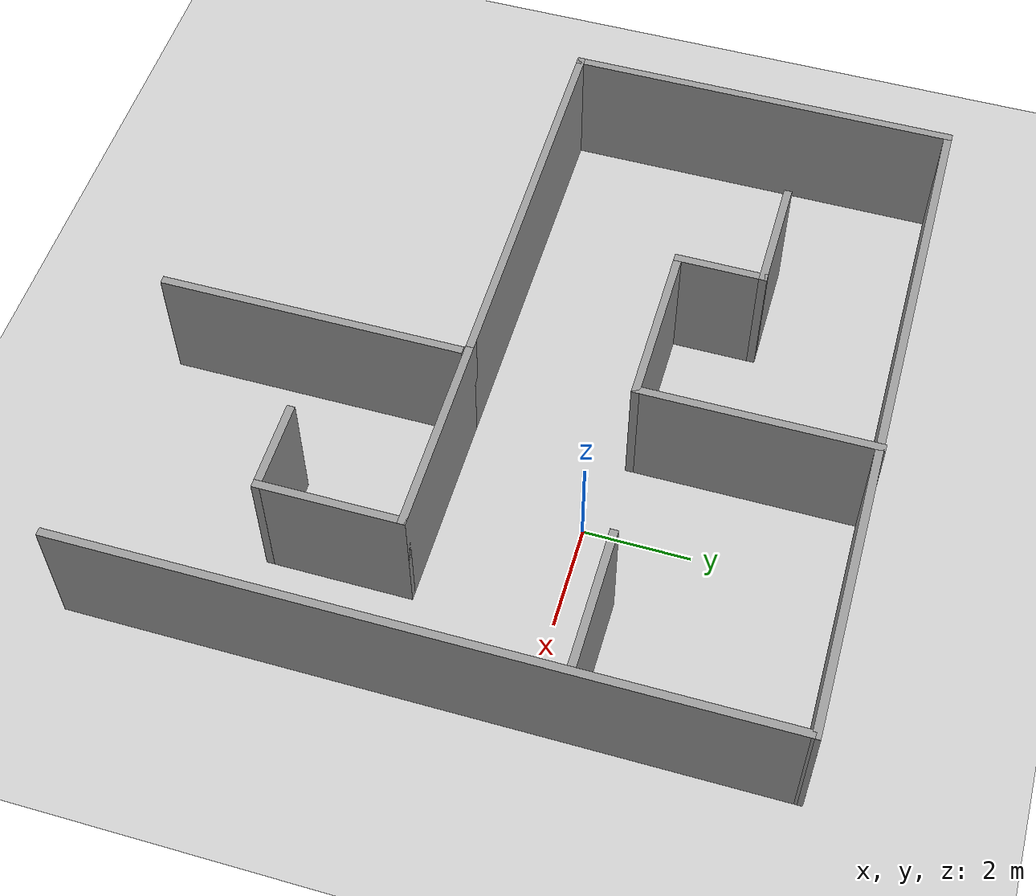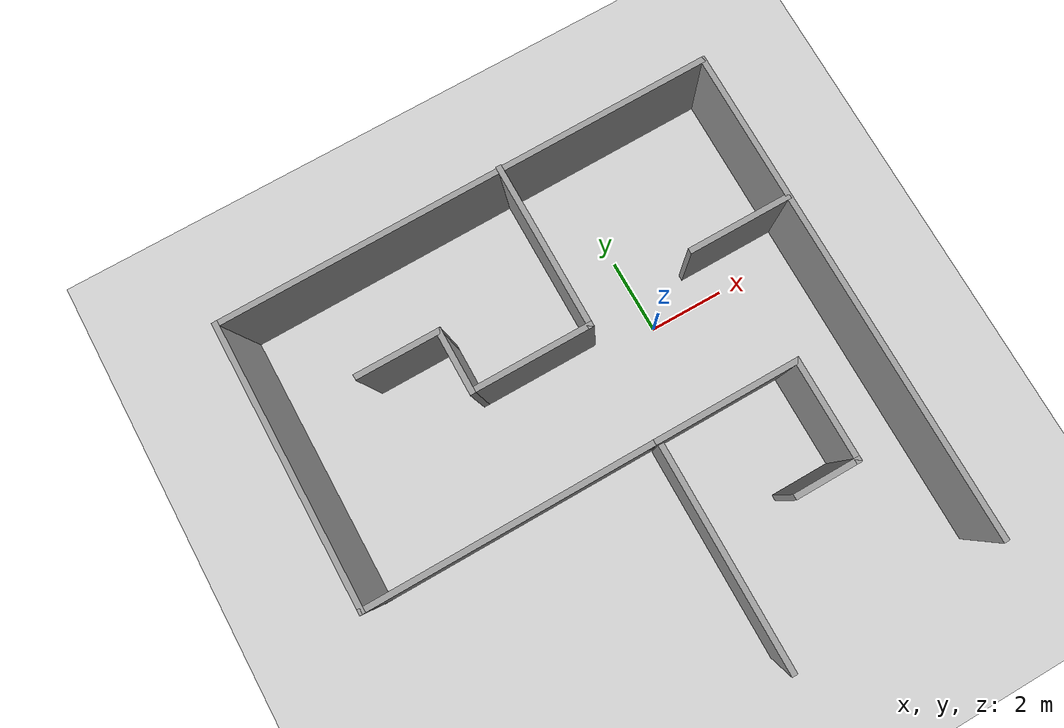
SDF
<sdf version="1.7">
 <world name="default">
  <light name="sun" type="directional">
   <pose>0 0 10 0 -0 0</pose>
   <diffuse>0.8 0.8 0.8 1</diffuse>
   <specular>0.2 0.2 0.2 1</specular>
   <attenuation>
    <range>1000</range>
    <constant>0.9</constant>
    <linear>0.01</linear>
    <quadratic>0.001</quadratic>
   </attenuation>
   <direction>-0.5 0.1 -0.9</direction>
   <spot><inner_angle>0</inner_angle><outer_angle>0</outer_angle><falloff>0</falloff></spot>
  </light>
  <model name="ground_plane">
   <static>1</static>
   <link name="link">
    <collision name="collision">
     <geometry><plane><normal>0 0 1</normal><size>100 100</size></plane></geometry>
     <surface>
      <contact><collide_bitmask>65535</collide_bitmask></contact>
      <friction><ode><mu>100</mu><mu2>50</mu2></ode></friction>
     </surface>
    </collision>
    <visual name="visual">
     <cast_shadows>0</cast_shadows>
     <geometry><plane><normal>0 0 1</normal><size>100 100</size></plane></geometry>
     <material>
      <script><uri>file://media/materials/scripts/gazebo.material</uri><name>Gazebo/Grey</name></script>
     </material>
    </visual>
   </link>
  </model>
  <gravity>0 0 -9.8</gravity>
  <magnetic_field>6e-06 2.3e-05 -4.2e-05</magnetic_field>
  <atmosphere type="adiabatic"/>
  <physics type="ode">
   <max_step_size>0.001</max_step_size>
   <real_time_factor>1</real_time_factor>
   <real_time_update_rate>1000</real_time_update_rate>
  </physics>
  <scene><ambient>0.4 0.4 0.4 1</ambient><background>0.7 0.7 0.7 1</background><shadows>1</shadows></scene>
  <spherical_coordinates>
   <surface_model>EARTH_WGS84</surface_model>
   <latitude_deg>0</latitude_deg>
   <longitude_deg>0</longitude_deg>
   <elevation>0</elevation>
   <heading_deg>0</heading_deg>
  </spherical_coordinates>
  <model name="maze">
   <pose>-2.52842 -1.77873 0 0 -0 0</pose>
   <link name="Wall_12">
    <collision name="Wall_12_Collision">
     <geometry><box><size>7.5 0.15 2.5</size></box></geometry>
     <pose>0 0 1.25 0 -0 0</pose>
    </collision>
    <visual name="Wall_12_Visual">
     <pose>0 0 1.25 0 -0 0</pose>
     <geometry><box><size>7.5 0.15 2.5</size></box></geometry>
     <material>
      <script><uri>file://media/materials/scripts/gazebo.material</uri><name>Gazebo/Grey</name></script>
      <ambient>1 1 1 1</ambient>
     </material>
     <meta><layer>0</layer></meta>
    </visual>
    <pose>-6.55 2.85046 0 0 -0 -1.5708</pose>
   </link>
   <link name="Wall_14">
    <collision name="Wall_14_Collision">
     <geometry><box><size>4.5 0.15 2.5</size></box></geometry>
     <pose>0 0 1.25 0 -0 0</pose>
    </collision>
    <visual name="Wall_14_Visual">
     <pose>0 0 1.25 0 -0 0</pose>
     <geometry><box><size>4.5 0.15 2.5</size></box></geometry>
     <material>
      <script><uri>file://media/materials/scripts/gazebo.material</uri><name>Gazebo/Grey</name></script>
      <ambient>1 1 1 1</ambient>
     </material>
     <meta><layer>0</layer></meta>
    </visual>
    <pose>0.943077 4.42082 0 0 -0 -1.5708</pose>
   </link>
   <link name="Wall_15">
    <collision name="Wall_15_Collision">
     <geometry><box><size>3.25 0.15 2.5</size></box></geometry>
     <pose>0 0 1.25 0 -0 0</pose>
    </collision>
    <visual name="Wall_15_Visual">
     <pose>0 0 1.25 0 -0 0</pose>
     <geometry><box><size>3.25 0.15 2.5</size></box></geometry>
     <material>
      <script><uri>file://media/materials/scripts/gazebo.material</uri><name>Gazebo/Grey</name></script>
      <ambient>1 1 1 1</ambient>
     </material>
     <meta><layer>0</layer></meta>
    </visual>
    <pose>-0.606923 2.24582 0 0 -0 3.14159</pose>
   </link>
   <link name="Wall_17">
    <collision name="Wall_17_Collision">
     <geometry><box><size>5.75 0.15 2.5</size></box></geometry>
     <pose>0 0 1.25 0 -0 0</pose>
    </collision>
    <visual name="Wall_17_Visual">
     <pose>0 0 1.25 0 -0 0</pose>
     <geometry><box><size>5.75 0.15 2.5</size></box></geometry>
     <material>
      <script><uri>file://media/materials/scripts/gazebo.material</uri><name>Gazebo/Grey</name></script>
      <ambient>1 1 1 1</ambient>
     </material>
     <meta><layer>0</layer></meta>
    </visual>
    <pose>0.978255 -3.79622 0 0 -0 1.5708</pose>
   </link>
   <link name="Wall_20">
    <collision name="Wall_20_Collision">
     <geometry><box><size>7.5 0.15 2.5</size></box></geometry>
     <pose>0 0 1.25 0 -0 0</pose>
    </collision>
    <visual name="Wall_20_Visual">
     <pose>0 0 1.25 0 -0 0</pose>
     <geometry><box><size>7.5 0.15 2.5</size></box></geometry>
     <material>
      <script><uri>file://media/materials/scripts/gazebo.material</uri><name>Gazebo/Grey</name></script>
      <ambient>1 1 1 1</ambient>
     </material>
     <meta><layer>0</layer></meta>
    </visual>
    <pose>-2.875 -0.82454 0 0 -0 0</pose>
   </link>
   <link name="Wall_21">
    <collision name="Wall_21_Collision">
     <geometry><box><size>4 0.15 2.5</size></box></geometry>
     <pose>0 0 1.25 0 -0 0</pose>
    </collision>
    <visual name="Wall_21_Visual">
     <pose>0 0 1.25 0 -0 0</pose>
     <geometry><box><size>4 0.15 2.5</size></box></geometry>
     <material>
      <script><uri>file://media/materials/scripts/gazebo.material</uri><name>Gazebo/Grey</name></script>
      <ambient>1 1 1 1</ambient>
     </material>
     <meta><layer>0</layer></meta>
    </visual>
    <pose>2.725 -0.82454 0 0 -0 0</pose>
   </link>
   <link name="Wall_22">
    <collision name="Wall_22_Collision">
     <geometry><box><size>2.75 0.15 2.5</size></box></geometry>
     <pose>0 0 1.25 0 -0 0</pose>
    </collision>
    <visual name="Wall_22_Visual">
     <pose>0 0 1.25 0 -0 0</pose>
     <geometry><box><size>2.75 0.15 2.5</size></box></geometry>
     <material>
      <script><uri>file://media/materials/scripts/gazebo.material</uri><name>Gazebo/Grey</name></script>
      <ambient>1 1 1 1</ambient>
     </material>
     <meta><layer>0</layer></meta>
    </visual>
    <pose>4.65 -2.12454 0 0 -0 -1.5708</pose>
   </link>
   <link name="Wall_23">
    <collision name="Wall_23_Collision">
     <geometry><box><size>1.75 0.15 2.5</size></box></geometry>
     <pose>0 0 1.25 0 -0 0</pose>
    </collision>
    <visual name="Wall_23_Visual">
     <pose>0 0 1.25 0 -0 0</pose>
     <geometry><box><size>1.75 0.15 2.5</size></box></geometry>
     <material>
      <script><uri>file://media/materials/scripts/gazebo.material</uri><name>Gazebo/Grey</name></script>
      <ambient>1 1 1 1</ambient>
     </material>
     <meta><layer>0</layer></meta>
    </visual>
    <pose>3.85 -3.42454 0 0 -0 3.14159</pose>
   </link>
   <link name="Wall_25">
    <collision name="Wall_25_Collision">
     <geometry><box><size>4.5 0.15 2.5</size></box></geometry>
     <pose>0 0 1.25 0 -0 0</pose>
    </collision>
    <visual name="Wall_25_Visual">
     <pose>0 0 1.25 0 -0 0</pose>
     <geometry><box><size>4.5 0.15 2.5</size></box></geometry>
     <material>
      <script><uri>file://media/materials/scripts/gazebo.material</uri><name>Gazebo/Grey</name></script>
      <ambient>1 1 1 1</ambient>
     </material>
     <meta><layer>0</layer></meta>
    </visual>
    <pose>0.943077 4.42082 0 0 -0 -1.5708</pose>
   </link>
   <link name="Wall_26">
    <collision name="Wall_26_Collision">
     <geometry><box><size>3.25 0.15 2.5</size></box></geometry>
     <pose>0 0 1.25 0 -0 0</pose>
    </collision>
    <visual name="Wall_26_Visual">
     <pose>0 0 1.25 0 -0 0</pose>
     <geometry><box><size>3.25 0.15 2.5</size></box></geometry>
     <material>
      <script><uri>file://media/materials/scripts/gazebo.material</uri><name>Gazebo/Grey</name></script>
      <ambient>1 1 1 1</ambient>
     </material>
     <meta><layer>0</layer></meta>
    </visual>
    <pose>-0.606923 2.24582 0 0 -0 3.14159</pose>
   </link>
   <link name="Wall_27">
    <collision name="Wall_27_Collision">
     <geometry><box><size>1.75 0.15 2.5</size></box></geometry>
     <pose>0 0 1.25 0 -0 0</pose>
    </collision>
    <visual name="Wall_27_Visual">
     <pose>0 0 1.25 0 -0 0</pose>
     <geometry><box><size>1.75 0.15 2.5</size></box></geometry>
     <material>
      <script><uri>file://media/materials/scripts/gazebo.material</uri><name>Gazebo/Grey</name></script>
      <ambient>1 1 1 1</ambient>
     </material>
     <meta><layer>0</layer></meta>
    </visual>
    <pose>-2.15692 3.04582 0 0 -0 1.5708</pose>
   </link>
   <link name="Wall_28">
    <collision name="Wall_28_Collision">
     <geometry><box><size>2.25 0.15 2.5</size></box></geometry>
     <pose>0 0 1.25 0 -0 0</pose>
    </collision>
    <visual name="Wall_28_Visual">
     <pose>0 0 1.25 0 -0 0</pose>
     <geometry><box><size>2.25 0.15 2.5</size></box></geometry>
     <material>
      <script><uri>file://media/materials/scripts/gazebo.material</uri><name>Gazebo/Grey</name></script>
      <ambient>1 1 1 1</ambient>
     </material>
     <meta><layer>0</layer></meta>
    </visual>
    <pose>-3.20692 3.84582 0 0 -0 3.14159</pose>
   </link>
   <link name="Wall_30">
    <collision name="Wall_30_Collision">
     <geometry><box><size>2.75 0.15 2.5</size></box></geometry>
     <pose>0 0 1.25 0 -0 0</pose>
    </collision>
    <visual name="Wall_30_Visual">
     <pose>0 0 1.25 0 -0 0</pose>
     <geometry><box><size>2.75 0.15 2.5</size></box></geometry>
     <material>
      <script><uri>file://media/materials/scripts/gazebo.material</uri><name>Gazebo/Grey</name></script>
      <ambient>1 1 1 1</ambient>
     </material>
     <meta><layer>0</layer></meta>
    </visual>
    <pose>5.20132 2.62062 0 0 -0 3.14159</pose>
   </link>
   <link name="Wall_5">
    <collision name="Wall_5_Collision">
     <geometry><box><size>13.25 0.15 2.5</size></box></geometry>
     <pose>0 0 1.25 0 -0 0</pose>
    </collision>
    <visual name="Wall_5_Visual">
     <pose>0 0 1.25 0 -0 0</pose>
     <geometry><box><size>13.25 0.15 2.5</size></box></geometry>
     <material>
      <script><uri>file://media/materials/scripts/gazebo.material</uri><name>Gazebo/Grey</name></script>
      <ambient>1 1 1 1</ambient>
     </material>
     <meta><layer>0</layer></meta>
    </visual>
    <pose>0 6.56064 0 0 -0 0.005371</pose>
   </link>
   <link name="Wall_8">
    <collision name="Wall_8_Collision">
     <geometry><box><size>13.25 0.15 2.5</size></box></geometry>
     <pose>0 0 1.25 0 -0 0</pose>
    </collision>
    <visual name="Wall_8_Visual">
     <pose>0 0 1.25 0 -0 0</pose>
     <geometry><box><size>13.25 0.15 2.5</size></box></geometry>
     <material>
      <script><uri>file://media/materials/scripts/gazebo.material</uri><name>Gazebo/Grey</name></script>
      <ambient>1 1 1 1</ambient>
     </material>
     <meta><layer>0</layer></meta>
    </visual>
    <pose>6.55 0.045818 0 0 -0 -1.5708</pose>
   </link>
   <static>1</static>
  </model>
 </world>
</sdf>
